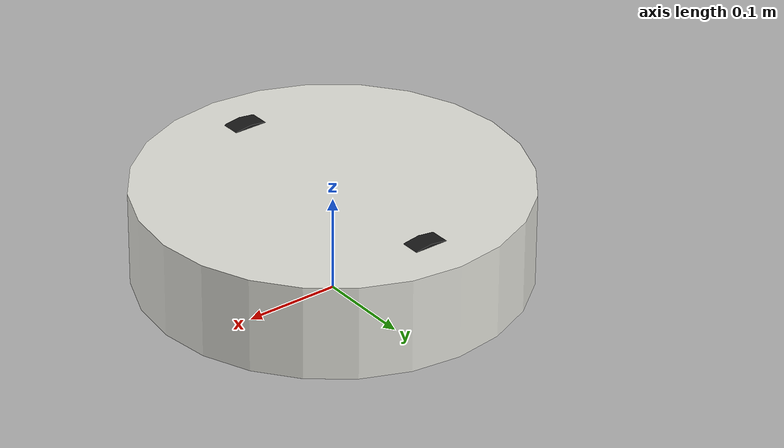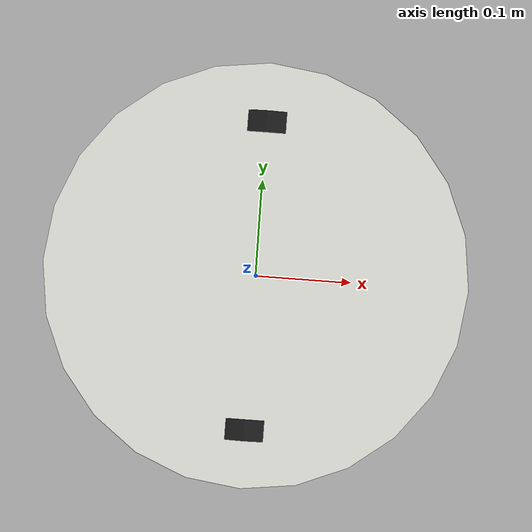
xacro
<?xml version="1.0"?>
<robot xmlns:xacro="http://www.ros.org/wiki/xacro">

  <xacro:property name="body_radius"        value="0.200" />
  <xacro:property name="body_height"        value="0.100" />
  <xacro:property name="ground_clearance"   value="0.020" />

  <xacro:property name="drive_wheel_radius" value="0.0615" />
  <xacro:property name="drive_wheel_width"  value="0.020" />
  <xacro:property name="wheel_span"         value="0.290" />

  <xacro:property name="caster_offset_x"    value="0.160" />

  <xacro:property name="caster_radius"      value="${ground_clearance / 2.0}" />

  <xacro:property name="base_joint_z"
      value="${ground_clearance + body_height / 2.0}" />

  <xacro:property name="wheel_z_offset"
      value="${drive_wheel_radius - base_joint_z}" />

  <xacro:property name="caster_z_offset"
      value="${ground_clearance - caster_radius - base_joint_z}" />

  <material name="white_gray">
    <color rgba="0.88 0.88 0.85 1.0"/>
  </material>

  <material name="black">
    <color rgba="0.10 0.10 0.10 1.0"/>
  </material>

  <material name="orange">
    <color rgba="0.90 0.48 0.13 1.0"/>
  </material>

  <xacro:macro name="cylinder_inertia" params="m r l o_xyz o_rpy">
    <inertial>
      <mass value="${m}"/>
      <origin xyz="${o_xyz}" rpy="${o_rpy}"/>
      <inertia
        ixx="${m * (3 * r * r + l * l) / 12.0}" ixy="0" ixz="0"
        iyy="${m * (3 * r * r + l * l) / 12.0}" iyz="0"
        izz="${m * r * r / 2.0}"/>
    </inertial>
  </xacro:macro>

  <xacro:macro name="sphere_inertia" params="m r o_xyz o_rpy">
    <inertial>
      <mass value="${m}"/>
      <origin xyz="${o_xyz}" rpy="${o_rpy}"/>
      <inertia
        ixx="${2.0 * m * r * r / 5.0}" ixy="0" ixz="0"
        iyy="${2.0 * m * r * r / 5.0}" iyz="0"
        izz="${2.0 * m * r * r / 5.0}"/>
    </inertial>
  </xacro:macro>

  <xacro:macro name="body_inertia" params="m r h o_xyz o_rpy">
    <inertial>
      <mass value="${m}"/>
      <origin xyz="${o_xyz}" rpy="${o_rpy}"/>
      <inertia
        ixx="${m * (3 * r * r + h * h) / 12.0}" ixy="0" ixz="0"
        iyy="${m * (3 * r * r + h * h) / 12.0}" iyz="0"
        izz="${m * r * r / 2.0}"/>
    </inertial>
  </xacro:macro>

  <xacro:macro name="drive_wheel_link" params="prefix">
    <link name="${prefix}_wheel_link">
      <visual>
        <geometry>
          <cylinder radius="${drive_wheel_radius}" length="${drive_wheel_width}"/>
        </geometry>
        <origin xyz="0 0 0" rpy="${pi / 2.0} 0 0"/>
        <material name="black"/>
      </visual>
      <collision>
        <geometry>
          <cylinder radius="${drive_wheel_radius}" length="${drive_wheel_width}"/>
        </geometry>
        <origin xyz="0 0 0" rpy="${pi / 2.0} 0 0"/>
      </collision>
      <xacro:cylinder_inertia
        m="0.15"
        r="${drive_wheel_radius}"
        l="${drive_wheel_width}"
        o_xyz="0 0 0"
        o_rpy="${pi / 2.0} 0 0"/>
    </link>
  </xacro:macro>

  <xacro:drive_wheel_link prefix="left"/>
  <xacro:drive_wheel_link prefix="right"/>

  <xacro:macro name="caster_link" params="prefix">
    <link name="${prefix}_caster_link">
      <visual>
        <geometry>
          <sphere radius="${caster_radius}"/>
        </geometry>
        <origin xyz="0 0 0" rpy="0 0 0"/>
        <material name="orange"/>
      </visual>
      <collision>
        <geometry>
          <sphere radius="${caster_radius}"/>
        </geometry>
        <origin xyz="0 0 0" rpy="0 0 0"/>
      </collision>
      <xacro:sphere_inertia
        m="0.05"
        r="${caster_radius}"
        o_xyz="0 0 0"
        o_rpy="0 0 0"/>
    </link>
  </xacro:macro>

  <xacro:caster_link prefix="front"/>
  <xacro:caster_link prefix="rear"/>

  <link name="base_footprint"/>

  <link name="base_link">
    <visual>
      <geometry>
        <cylinder radius="${body_radius}" length="${body_height}"/>
      </geometry>
      <origin xyz="0 0 0" rpy="0 0 0"/>
      <material name="white_gray"/>
    </visual>
    <collision>
      <geometry>
        <cylinder radius="${body_radius}" length="${body_height}"/>
      </geometry>
      <origin xyz="0 0 0" rpy="0 0 0"/>
    </collision>
    <xacro:body_inertia
      m="3.0"
      r="${body_radius}"
      h="${body_height}"
      o_xyz="0 0 0"
      o_rpy="0 0 0"/>
  </link>

  <joint name="base_joint" type="fixed">
    <parent link="base_footprint"/>
    <child  link="base_link"/>
    <origin xyz="0 0 ${base_joint_z}" rpy="0 0 0"/>
  </joint>

  <!-- LEFT WHEEL JOINT - Axis should be Y (perpendicular to wheel width) -->
  <joint name="base_left_wheel_joint" type="continuous">
    <parent link="base_link"/>
    <child  link="left_wheel_link"/>
    <origin xyz="0 ${wheel_span / 2.0} ${wheel_z_offset}" rpy="0 0 0"/>
    <axis xyz="0 1 0"/>
    <dynamics damping="0.01" friction="0.01"/>
  </joint>

  <!-- RIGHT WHEEL JOINT - Axis should be Y (perpendicular to wheel width) -->
  <joint name="base_right_wheel_joint" type="continuous">
    <parent link="base_link"/>
    <child  link="right_wheel_link"/>
    <origin xyz="0 ${-(wheel_span / 2.0)} ${wheel_z_offset}" rpy="0 0 0"/>
    <axis xyz="0 1 0"/>
    <dynamics damping="0.01" friction="0.01"/>
  </joint>

  <joint name="base_front_caster_joint" type="fixed">
    <parent link="base_link"/>
    <child  link="front_caster_link"/>
    <origin xyz="${caster_offset_x} 0 ${caster_z_offset}" rpy="0 0 0"/>
  </joint>

  <joint name="base_rear_caster_joint" type="fixed">
    <parent link="base_link"/>
    <child  link="rear_caster_link"/>
    <origin xyz="${-caster_offset_x} 0 ${caster_z_offset}" rpy="0 0 0"/>
  </joint>

</robot>
